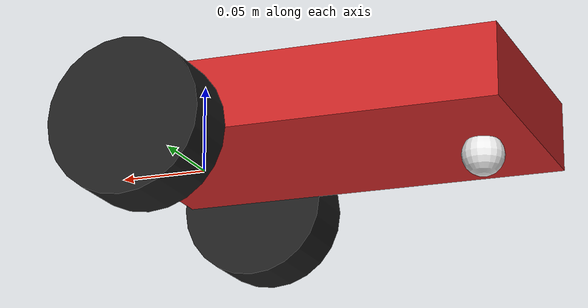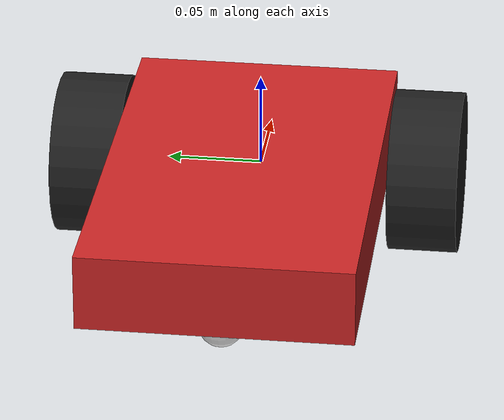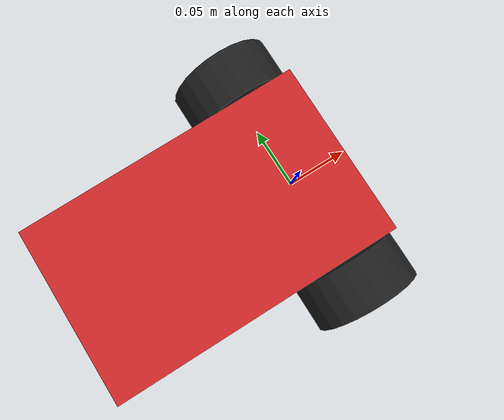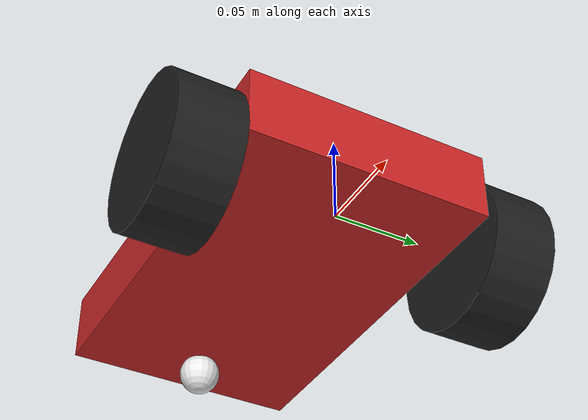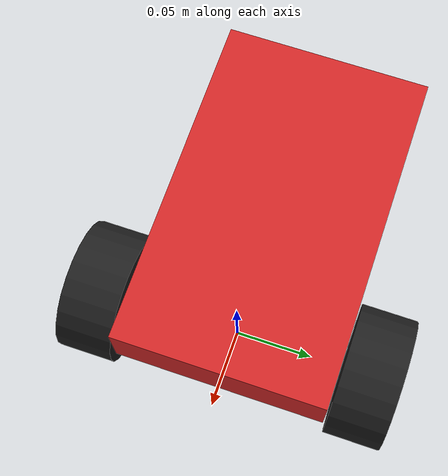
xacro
<?xml version="1.0"?>
<robot xmlns:xacro="http://www.ros.org/wiki/xacro" >
<xacro:include filename="inertial_macros.xacro" />

    <link name="base_link">
    </link>

    <joint name="chassis_joint" type="fixed">
        <parent link="base_link"/>
        <child link="chassis_link"/>
        <origin xyz="-0.192 0.0 0.0" rpy="0.0 0.0 0.0"/>
    </joint>

    <link name="chassis_link">
        <visual>
            <geometry>
                <box size="0.23 0.14 0.04"/>
            </geometry>
            <material name="red"/>
        <origin xyz="0.115 0.0 0.02" rpy="0.0 0.0 0.0"/>
        </visual>
        <collision>
            <geometry>
                <box size="0.23 0.14 0.04"/>
            </geometry>
        </collision>
        <xacro:inertial_box mass="0.98" x="0.132" y="0.0" z="0.004">
            <origin xyz="0.115 0.0 0.02" rpy="0.0 0.0 0.0"/>
        </xacro:inertial_box>
    </link>

    <!-- LEFT WHEEL LINK -->

    <joint name="left_wheel_joint" type="continuous">
        <parent link="base_link"/>
        <child link="left_wheel_link"/>
        <origin xyz="0.0 0.090 0.0" rpy="-${pi/2} 0.0 0.0"/>
        <axis xyz="0.0 0.0 1.0"/>
    </joint>

    <link name="left_wheel_link">
        <visual>
            <geometry>
                <cylinder radius="0.043" length="0.037"/>
            </geometry>
            <material name="black">
            </material>
        </visual>
        <collision>
            <geometry>
                <cylinder radius="0.043" length="0.037"/>
            </geometry>
        </collision>
        <xacro:inertial_cylinder mass="0.058" length="0.037" radius="0.043">
            <origin xyz="0.0 0.0 0.0" rpy="0.0 0.0 0.0"/>
        </xacro:inertial_cylinder>
    </link>

        <!-- RIGHT WHEEL LINK -->
    <joint name="right_wheel_joint" type="continuous">
        <parent link="base_link"/>
        <child link="right_wheel_link"/>
        <origin xyz="0.0 -0.090 0.0" rpy="${pi/2} 0.0 0.0"/>
        <axis xyz="0.0 0.0 -1.0"/>
    </joint>

    <link name="right_wheel_link">
        <visual>
            <geometry>
                <cylinder radius="0.043" length="0.037"/>
            </geometry>
            <material name="black">
            </material>
        </visual>
        <collision>
            <geometry>
                <cylinder radius="0.043" length="0.037"/>
            </geometry>
        </collision>
        <xacro:inertial_cylinder mass="0.058" length="0.037" radius="0.043">
            <origin xyz="0.0 0.0 0.0" rpy="0.0 0.0 0.0"/>
        </xacro:inertial_cylinder>
    </link>

        <!-- CASTER WHEEL LINK -->
    <joint name="caster_wheel_joint" type="fixed">
        <parent link="chassis_link"/>
        <child link="caster_wheel_link"/>
        <origin xyz="0.028 0.0 -0.008"/>
    </joint>

    <link name="caster_wheel_link">
        <visual>
            <geometry>
                    <sphere radius="0.012"/>
            </geometry>
            <material name="white"/>
        </visual>
        <collision>
            <geometry>
                <sphere radius="0.012"/>
            </geometry>
        </collision>
        <xacro:inertial_sphere mass="0.022" radius="0.012">
            <origin xyz="0.0 0.0 0.0" rpy="0.0 0.0 0.0"/>
        </xacro:inertial_sphere>
    </link>

</robot>
